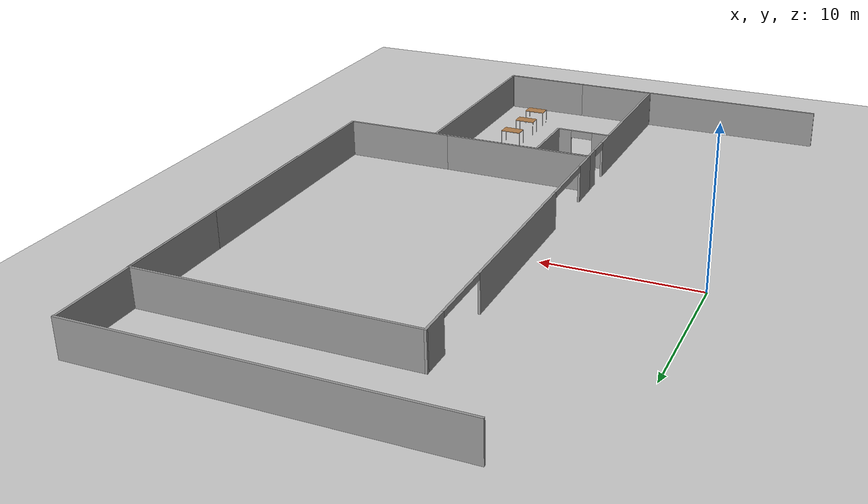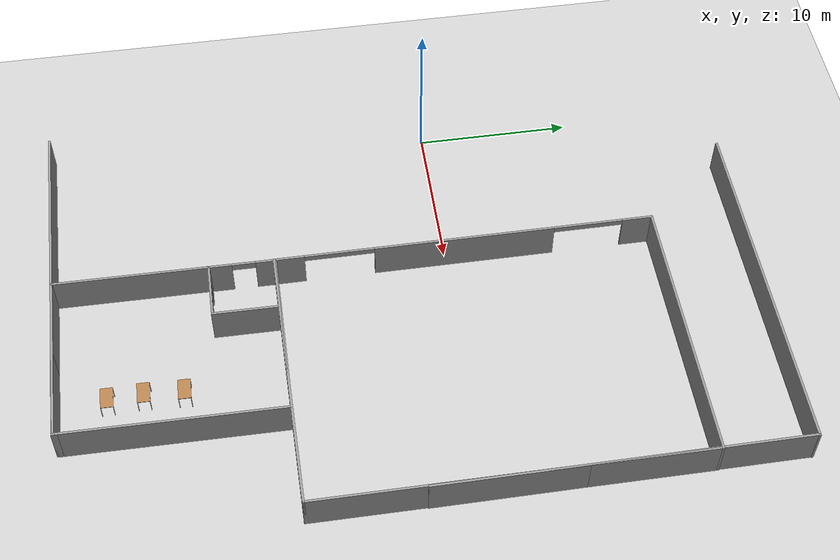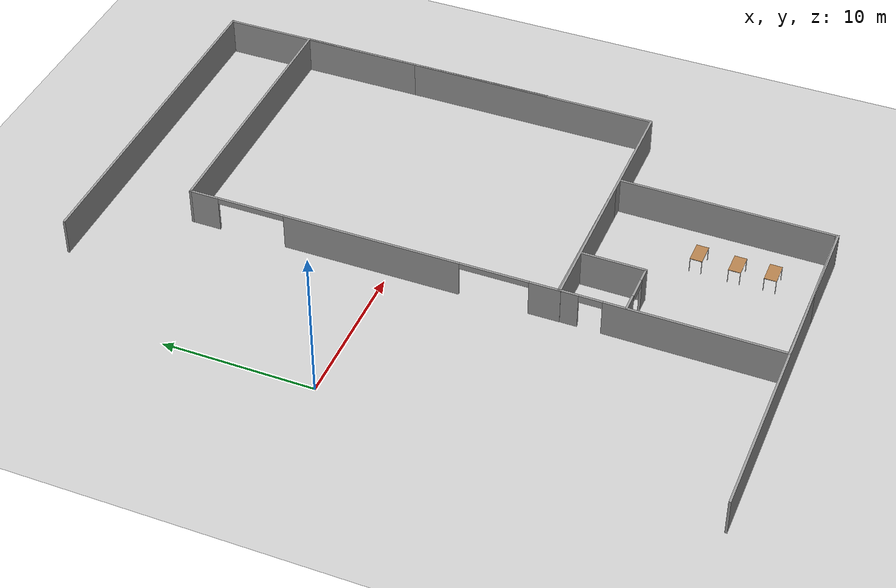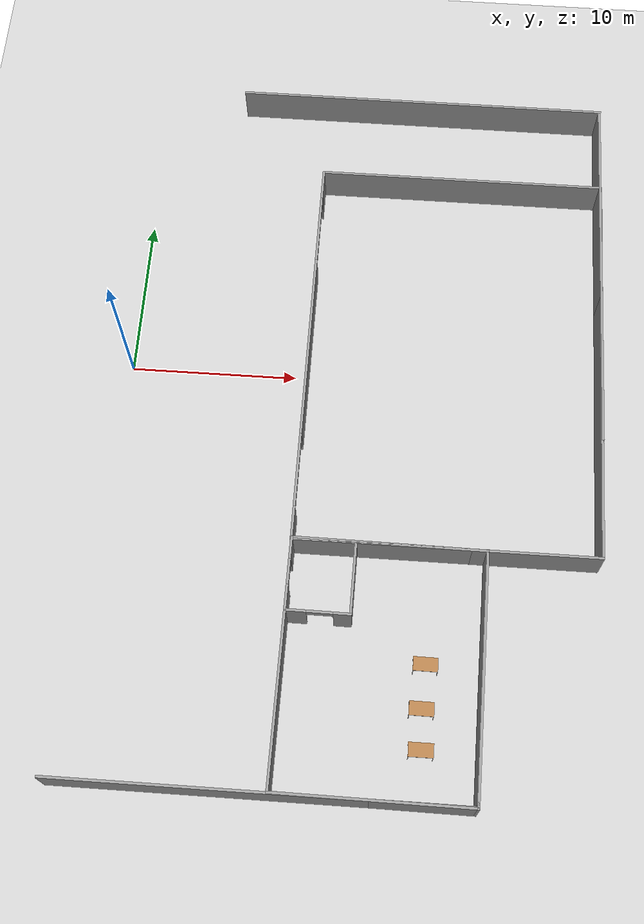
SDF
<sdf version="1.6">
 <world name="default">
  <model name="office3_0">
   <pose>16.2882 -18.1113 0 0 -0 1.56429</pose>
   <link name="Wall_226">
    <collision name="Wall_226_Collision">
     <geometry><box><size>11.25 0.15 2.5</size></box></geometry>
     <pose>0 0 1.25 0 -0 0</pose>
    </collision>
    <visual name="Wall_226_Visual">
     <pose>0 0 1.25 0 -0 0</pose>
     <geometry><box><size>11.25 0.15 2.5</size></box></geometry>
     <material>
      <script><uri>file://media/materials/scripts/gazebo.material</uri><name>Gazebo/Grey</name></script>
      <ambient>1 1 1 1</ambient>
     </material>
    </visual>
    <pose>-7.05 0 0 0 -0 1.5708</pose>
   </link>
   <link name="Wall_228">
    <pose>0 5.55 0 0 -0 0</pose>
    <visual name="Wall_228_Visual_0">
     <pose>-1.41788 0 1.25 0 -0 0</pose>
     <geometry><box><size>11.4142 0.15 2.5</size></box></geometry>
     <material>
      <script><uri>file://media/materials/scripts/gazebo.material</uri><name>Gazebo/Grey</name></script>
      <ambient>1 1 1 1</ambient>
     </material>
    </visual>
    <collision name="Wall_228_Collision_0">
     <geometry><box><size>11.4142 0.15 2.5</size></box></geometry>
     <pose>-1.41788 0 1.25 0 -0 0</pose>
    </collision>
    <visual name="Wall_228_Visual_1">
     <pose>6.45712 0 1.25 0 -0 0</pose>
     <geometry><box><size>1.33575 0.15 2.5</size></box></geometry>
     <material>
      <script><uri>file://media/materials/scripts/gazebo.material</uri><name>Gazebo/Grey</name></script>
      <ambient>1 1 1 1</ambient>
     </material>
    </visual>
    <collision name="Wall_228_Collision_1">
     <geometry><box><size>1.33575 0.15 2.5</size></box></geometry>
     <pose>6.45712 0 1.25 0 -0 0</pose>
    </collision>
    <visual name="Wall_228_Visual_2">
     <pose>5.03925 0 2.25 0 -0 0</pose>
     <geometry><box><size>1.5 0.15 0.5</size></box></geometry>
     <material>
      <script><uri>file://media/materials/scripts/gazebo.material</uri><name>Gazebo/Grey</name></script>
      <ambient>1 1 1 1</ambient>
     </material>
    </visual>
    <collision name="Wall_228_Collision_2">
     <geometry><box><size>1.5 0.15 0.5</size></box></geometry>
     <pose>5.03925 0 2.25 0 -0 0</pose>
    </collision>
   </link>
   <link name="Wall_229">
    <collision name="Wall_229_Collision">
     <geometry><box><size>11.25 0.15 2.5</size></box></geometry>
     <pose>0 0 1.25 0 -0 0</pose>
    </collision>
    <visual name="Wall_229_Visual">
     <pose>0 0 1.25 0 -0 0</pose>
     <geometry><box><size>11.25 0.15 2.5</size></box></geometry>
     <material>
      <script><uri>file://media/materials/scripts/gazebo.material</uri><name>Gazebo/Grey</name></script>
      <ambient>1 1 1 1</ambient>
     </material>
    </visual>
    <pose>7.05 0 0 0 0 -1.5708</pose>
   </link>
   <link name="Wall_230">
    <collision name="Wall_230_Collision">
     <geometry><box><size>14 0.15 2.5</size></box></geometry>
     <pose>0 0 1.25 0 -0 0</pose>
    </collision>
    <visual name="Wall_230_Visual">
     <pose>0 0 1.25 0 -0 0</pose>
     <geometry><box><size>14 0.15 2.5</size></box></geometry>
     <material>
      <script><uri>file://media/materials/scripts/gazebo.material</uri><name>Gazebo/Grey</name></script>
      <ambient>1 1 1 1</ambient>
     </material>
    </visual>
    <pose>0.125 -5.55 0 0 -0 3.14159</pose>
   </link>
   <link name="Wall_231">
    <collision name="Wall_231_Collision">
     <geometry><box><size>0.4 0.15 2.5</size></box></geometry>
     <pose>0 0 1.25 0 -0 0</pose>
    </collision>
    <visual name="Wall_231_Visual">
     <pose>0 0 1.25 0 -0 0</pose>
     <geometry><box><size>0.4 0.15 2.5</size></box></geometry>
     <material>
      <script><uri>file://media/materials/scripts/gazebo.material</uri><name>Gazebo/Grey</name></script>
      <ambient>1 1 1 1</ambient>
     </material>
    </visual>
    <pose>-6.925 -5.55 0 0 -0 3.14159</pose>
   </link>
   <link name="Wall_235">
    <pose>2.82004 3.69571 0 0 0 -1.5708</pose>
    <visual name="Wall_235_Visual_0">
     <pose>-1.26863 0 1.25 0 -0 0</pose>
     <geometry><box><size>1.21274 0.15 2.5</size></box></geometry>
     <material>
      <script><uri>file://media/materials/scripts/gazebo.material</uri><name>Gazebo/Grey</name></script>
      <ambient>1 1 1 1</ambient>
     </material>
    </visual>
    <collision name="Wall_235_Collision_0">
     <geometry><box><size>1.21274 0.15 2.5</size></box></geometry>
     <pose>-1.26863 0 1.25 0 -0 0</pose>
    </collision>
    <visual name="Wall_235_Visual_1">
     <pose>1.35637 0 1.25 0 -0 0</pose>
     <geometry><box><size>1.03726 0.15 2.5</size></box></geometry>
     <material>
      <script><uri>file://media/materials/scripts/gazebo.material</uri><name>Gazebo/Grey</name></script>
      <ambient>1 1 1 1</ambient>
     </material>
    </visual>
    <collision name="Wall_235_Collision_1">
     <geometry><box><size>1.03726 0.15 2.5</size></box></geometry>
     <pose>1.35637 0 1.25 0 -0 0</pose>
    </collision>
    <visual name="Wall_235_Visual_2">
     <pose>0.087742 0 2.25 0 -0 0</pose>
     <geometry><box><size>1.5 0.15 0.5</size></box></geometry>
     <material>
      <script><uri>file://media/materials/scripts/gazebo.material</uri><name>Gazebo/Grey</name></script>
      <ambient>1 1 1 1</ambient>
     </material>
    </visual>
    <collision name="Wall_235_Collision_2">
     <geometry><box><size>1.5 0.15 0.5</size></box></geometry>
     <pose>0.087742 0 2.25 0 -0 0</pose>
    </collision>
   </link>
   <link name="Wall_236">
    <collision name="Wall_236_Collision">
     <geometry><box><size>4.25 0.15 2.5</size></box></geometry>
     <pose>0 0 1.25 0 -0 0</pose>
    </collision>
    <visual name="Wall_236_Visual">
     <pose>0 0 1.25 0 -0 0</pose>
     <geometry><box><size>4.25 0.15 2.5</size></box></geometry>
     <material>
      <script><uri>file://media/materials/scripts/gazebo.material</uri><name>Gazebo/Grey</name></script>
      <ambient>1 1 1 1</ambient>
     </material>
    </visual>
    <pose>4.87004 1.89571 0 0 -0 0</pose>
   </link>
   <static>1</static>
  </model>
  <model name="park_1">
   <pose>19.5492 1.20649 0 0 -0 1.57203</pose>
   <link name="Wall_10">
    <collision name="Wall_10_Collision">
     <geometry><box><size>24.75 0.15 2.5</size></box></geometry>
     <pose>0 0 1.25 0 -0 0</pose>
    </collision>
    <visual name="Wall_10_Visual">
     <pose>0 0 1.25 0 -0 0</pose>
     <geometry><box><size>24.75 0.15 2.5</size></box></geometry>
     <material>
      <script><uri>file://media/materials/scripts/gazebo.material</uri><name>Gazebo/Grey</name></script>
      <ambient>1 1 1 1</ambient>
     </material>
    </visual>
    <pose>0 -8.8 0 0 -0 0</pose>
   </link>
   <link name="Wall_11">
    <collision name="Wall_11_Collision">
     <geometry><box><size>17.75 0.15 2.5</size></box></geometry>
     <pose>0 0 1.25 0 -0 0</pose>
    </collision>
    <visual name="Wall_11_Visual">
     <pose>0 0 1.25 0 -0 0</pose>
     <geometry><box><size>17.75 0.15 2.5</size></box></geometry>
     <material>
      <script><uri>file://media/materials/scripts/gazebo.material</uri><name>Gazebo/Grey</name></script>
      <ambient>1 1 1 1</ambient>
     </material>
    </visual>
    <pose>12.3 0 0 0 -0 1.5708</pose>
   </link>
   <link name="Wall_12">
    <pose>0 8.8 0 0 -0 3.14159</pose>
    <visual name="Wall_12_Visual_0">
     <pose>-11.3671 0 1.25 0 -0 0</pose>
     <geometry><box><size>2.0158 0.15 2.5</size></box></geometry>
     <material>
      <script><uri>file://media/materials/scripts/gazebo.material</uri><name>Gazebo/Grey</name></script>
      <ambient>1 1 1 1</ambient>
     </material>
    </visual>
    <collision name="Wall_12_Collision_0">
     <geometry><box><size>2.0158 0.15 2.5</size></box></geometry>
     <pose>-11.3671 0 1.25 0 -0 0</pose>
    </collision>
    <visual name="Wall_12_Visual_1">
     <pose>-0.005473 0 1.25 0 -0 0</pose>
     <geometry><box><size>11.7075 0.15 2.5</size></box></geometry>
     <material>
      <script><uri>file://media/materials/scripts/gazebo.material</uri><name>Gazebo/Grey</name></script>
      <ambient>1 1 1 1</ambient>
     </material>
    </visual>
    <collision name="Wall_12_Collision_1">
     <geometry><box><size>11.7075 0.15 2.5</size></box></geometry>
     <pose>-0.005473 0 1.25 0 -0 0</pose>
    </collision>
    <visual name="Wall_12_Visual_2">
     <pose>11.3616 0 1.25 0 -0 0</pose>
     <geometry><box><size>2.02674 0.15 2.5</size></box></geometry>
     <material>
      <script><uri>file://media/materials/scripts/gazebo.material</uri><name>Gazebo/Grey</name></script>
      <ambient>1 1 1 1</ambient>
     </material>
    </visual>
    <collision name="Wall_12_Collision_2">
     <geometry><box><size>2.02674 0.15 2.5</size></box></geometry>
     <pose>11.3616 0 1.25 0 -0 0</pose>
    </collision>
    <visual name="Wall_12_Visual_3">
     <pose>-8.1092 0 2.3 0 -0 0</pose>
     <geometry><box><size>4.5 0.15 0.4</size></box></geometry>
     <material>
      <script><uri>file://media/materials/scripts/gazebo.material</uri><name>Gazebo/Grey</name></script>
      <ambient>1 1 1 1</ambient>
     </material>
    </visual>
    <collision name="Wall_12_Collision_3">
     <geometry><box><size>4.5 0.15 0.4</size></box></geometry>
     <pose>-8.1092 0 2.3 0 -0 0</pose>
    </collision>
    <visual name="Wall_12_Visual_4">
     <pose>8.09826 0 2.3 0 -0 0</pose>
     <geometry><box><size>4.5 0.15 0.4</size></box></geometry>
     <material>
      <script><uri>file://media/materials/scripts/gazebo.material</uri><name>Gazebo/Grey</name></script>
      <ambient>1 1 1 1</ambient>
     </material>
    </visual>
    <collision name="Wall_12_Collision_4">
     <geometry><box><size>4.5 0.15 0.4</size></box></geometry>
     <pose>8.09826 0 2.3 0 -0 0</pose>
    </collision>
   </link>
   <link name="Wall_4">
    <collision name="Wall_4_Collision">
     <geometry><box><size>17.75 0.15 2.5</size></box></geometry>
     <pose>0 0 1.25 0 -0 0</pose>
    </collision>
    <visual name="Wall_4_Visual">
     <pose>0 0 1.25 0 -0 0</pose>
     <geometry><box><size>17.75 0.15 2.5</size></box></geometry>
     <material>
      <script><uri>file://media/materials/scripts/gazebo.material</uri><name>Gazebo/Grey</name></script>
      <ambient>1 1 1 1</ambient>
     </material>
    </visual>
    <pose>-12.3 0 0 0 0 -1.5708</pose>
   </link>
   <static>1</static>
  </model>
  <model name="table_4">
   <static>0</static>
   <link name="link">
    <collision name="surface">
     <pose>0 0 1 0 -0 0</pose>
     <geometry><box><size>1.5 0.8 0.03</size></box></geometry>
     <surface><friction><ode><mu>0.6</mu><mu2>0.6</mu2></ode></friction></surface>
    </collision>
    <visual name="visual1">
     <pose>0 0 1 0 -0 0</pose>
     <geometry><box><size>1.4 0.8 0.04</size></box></geometry>
     <material>
      <script><uri>file://media/materials/scripts/gazebo.material</uri><name>Gazebo/Wood</name></script>
     </material>
    </visual>
    <collision name="front_left_leg">
     <pose>0.68 0.38 0.5 0 -0 0</pose>
     <geometry><cylinder><radius>0.02</radius><length>1</length></cylinder></geometry>
    </collision>
    <visual name="front_left_leg">
     <pose>0.68 0.38 0.5 0 -0 0</pose>
     <geometry><cylinder><radius>0.02</radius><length>1</length></cylinder></geometry>
     <material>
      <script><uri>file://media/materials/scripts/gazebo.material</uri><name>Gazebo/Grey</name></script>
     </material>
    </visual>
    <collision name="front_right_leg">
     <pose>0.68 -0.38 0.5 0 -0 0</pose>
     <geometry><cylinder><radius>0.02</radius><length>1</length></cylinder></geometry>
    </collision>
    <visual name="front_right_leg">
     <pose>0.68 -0.38 0.5 0 -0 0</pose>
     <geometry><cylinder><radius>0.02</radius><length>1</length></cylinder></geometry>
     <material>
      <script><uri>file://media/materials/scripts/gazebo.material</uri><name>Gazebo/Grey</name></script>
     </material>
    </visual>
    <collision name="back_right_leg">
     <pose>-0.68 -0.38 0.5 0 -0 0</pose>
     <geometry><cylinder><radius>0.02</radius><length>1</length></cylinder></geometry>
    </collision>
    <visual name="back_right_leg">
     <pose>-0.68 -0.38 0.5 0 -0 0</pose>
     <geometry><cylinder><radius>0.02</radius><length>1</length></cylinder></geometry>
     <material>
      <script><uri>file://media/materials/scripts/gazebo.material</uri><name>Gazebo/Grey</name></script>
     </material>
    </visual>
    <collision name="back_left_leg">
     <pose>-0.68 0.38 0.5 0 -0 0</pose>
     <geometry><cylinder><radius>0.02</radius><length>1</length></cylinder></geometry>
    </collision>
    <visual name="back_left_leg">
     <pose>-0.68 0.38 0.5 0 -0 0</pose>
     <geometry><cylinder><radius>0.02</radius><length>1</length></cylinder></geometry>
     <material>
      <script><uri>file://media/materials/scripts/gazebo.material</uri><name>Gazebo/Grey</name></script>
     </material>
    </visual>
    <inertial>
     <inertia><ixx>1</ixx><ixy>0</ixy><ixz>0</ixz><iyy>1</iyy><iyz>0</iyz><izz>1</izz></inertia>
     <mass>1</mass>
    </inertial>
   </link>
   <pose>18.7391 -17.4246 -8e-06 0 -2e-06 -0.009973</pose>
  </model>
  <model name="table_5">
   <static>0</static>
   <link name="link">
    <collision name="surface">
     <pose>0 0 1 0 -0 0</pose>
     <geometry><box><size>1.5 0.8 0.03</size></box></geometry>
     <surface><friction><ode><mu>0.6</mu><mu2>0.6</mu2></ode></friction></surface>
    </collision>
    <visual name="visual1">
     <pose>0 0 1 0 -0 0</pose>
     <geometry><box><size>1.4 0.8 0.04</size></box></geometry>
     <material>
      <script><uri>file://media/materials/scripts/gazebo.material</uri><name>Gazebo/Wood</name></script>
     </material>
    </visual>
    <collision name="front_left_leg">
     <pose>0.68 0.38 0.5 0 -0 0</pose>
     <geometry><cylinder><radius>0.02</radius><length>1</length></cylinder></geometry>
    </collision>
    <visual name="front_left_leg">
     <pose>0.68 0.38 0.5 0 -0 0</pose>
     <geometry><cylinder><radius>0.02</radius><length>1</length></cylinder></geometry>
     <material>
      <script><uri>file://media/materials/scripts/gazebo.material</uri><name>Gazebo/Grey</name></script>
     </material>
    </visual>
    <collision name="front_right_leg">
     <pose>0.68 -0.38 0.5 0 -0 0</pose>
     <geometry><cylinder><radius>0.02</radius><length>1</length></cylinder></geometry>
    </collision>
    <visual name="front_right_leg">
     <pose>0.68 -0.38 0.5 0 -0 0</pose>
     <geometry><cylinder><radius>0.02</radius><length>1</length></cylinder></geometry>
     <material>
      <script><uri>file://media/materials/scripts/gazebo.material</uri><name>Gazebo/Grey</name></script>
     </material>
    </visual>
    <collision name="back_right_leg">
     <pose>-0.68 -0.38 0.5 0 -0 0</pose>
     <geometry><cylinder><radius>0.02</radius><length>1</length></cylinder></geometry>
    </collision>
    <visual name="back_right_leg">
     <pose>-0.68 -0.38 0.5 0 -0 0</pose>
     <geometry><cylinder><radius>0.02</radius><length>1</length></cylinder></geometry>
     <material>
      <script><uri>file://media/materials/scripts/gazebo.material</uri><name>Gazebo/Grey</name></script>
     </material>
    </visual>
    <collision name="back_left_leg">
     <pose>-0.68 0.38 0.5 0 -0 0</pose>
     <geometry><cylinder><radius>0.02</radius><length>1</length></cylinder></geometry>
    </collision>
    <visual name="back_left_leg">
     <pose>-0.68 0.38 0.5 0 -0 0</pose>
     <geometry><cylinder><radius>0.02</radius><length>1</length></cylinder></geometry>
     <material>
      <script><uri>file://media/materials/scripts/gazebo.material</uri><name>Gazebo/Grey</name></script>
     </material>
    </visual>
    <inertial>
     <inertia><ixx>1</ixx><ixy>0</ixy><ixz>0</ixz><iyy>1</iyy><iyz>0</iyz><izz>1</izz></inertia>
     <mass>1</mass>
    </inertial>
   </link>
   <pose>18.6346 -19.9013 -9e-06 0 -1e-06 -0.008076</pose>
  </model>
  <model name="table_6">
   <static>0</static>
   <link name="link">
    <collision name="surface">
     <pose>0 0 1 0 -0 0</pose>
     <geometry><box><size>1.5 0.8 0.03</size></box></geometry>
     <surface><friction><ode><mu>0.6</mu><mu2>0.6</mu2></ode></friction></surface>
    </collision>
    <visual name="visual1">
     <pose>0 0 1 0 -0 0</pose>
     <geometry><box><size>1.4 0.8 0.04</size></box></geometry>
     <material>
      <script><uri>file://media/materials/scripts/gazebo.material</uri><name>Gazebo/Wood</name></script>
     </material>
    </visual>
    <collision name="front_left_leg">
     <pose>0.68 0.38 0.5 0 -0 0</pose>
     <geometry><cylinder><radius>0.02</radius><length>1</length></cylinder></geometry>
    </collision>
    <visual name="front_left_leg">
     <pose>0.68 0.38 0.5 0 -0 0</pose>
     <geometry><cylinder><radius>0.02</radius><length>1</length></cylinder></geometry>
     <material>
      <script><uri>file://media/materials/scripts/gazebo.material</uri><name>Gazebo/Grey</name></script>
     </material>
    </visual>
    <collision name="front_right_leg">
     <pose>0.68 -0.38 0.5 0 -0 0</pose>
     <geometry><cylinder><radius>0.02</radius><length>1</length></cylinder></geometry>
    </collision>
    <visual name="front_right_leg">
     <pose>0.68 -0.38 0.5 0 -0 0</pose>
     <geometry><cylinder><radius>0.02</radius><length>1</length></cylinder></geometry>
     <material>
      <script><uri>file://media/materials/scripts/gazebo.material</uri><name>Gazebo/Grey</name></script>
     </material>
    </visual>
    <collision name="back_right_leg">
     <pose>-0.68 -0.38 0.5 0 -0 0</pose>
     <geometry><cylinder><radius>0.02</radius><length>1</length></cylinder></geometry>
    </collision>
    <visual name="back_right_leg">
     <pose>-0.68 -0.38 0.5 0 -0 0</pose>
     <geometry><cylinder><radius>0.02</radius><length>1</length></cylinder></geometry>
     <material>
      <script><uri>file://media/materials/scripts/gazebo.material</uri><name>Gazebo/Grey</name></script>
     </material>
    </visual>
    <collision name="back_left_leg">
     <pose>-0.68 0.38 0.5 0 -0 0</pose>
     <geometry><cylinder><radius>0.02</radius><length>1</length></cylinder></geometry>
    </collision>
    <visual name="back_left_leg">
     <pose>-0.68 0.38 0.5 0 -0 0</pose>
     <geometry><cylinder><radius>0.02</radius><length>1</length></cylinder></geometry>
     <material>
      <script><uri>file://media/materials/scripts/gazebo.material</uri><name>Gazebo/Grey</name></script>
     </material>
    </visual>
    <inertial>
     <inertia><ixx>1</ixx><ixy>0</ixy><ixz>0</ixz><iyy>1</iyy><iyz>0</iyz><izz>1</izz></inertia>
     <mass>1</mass>
    </inertial>
   </link>
   <pose>18.7055 -22.1335 -9e-06 0 -1e-06 0.002116</pose>
  </model>
  <model name="ground_plane">
   <static>1</static>
   <link name="link">
    <collision name="collision">
     <geometry><plane><normal>0 0 1</normal><size>100 100</size></plane></geometry>
     <surface><friction><ode><mu>100</mu><mu2>50</mu2></ode></friction></surface>
    </collision>
    <visual name="visual">
     <cast_shadows>0</cast_shadows>
     <geometry><plane><normal>0 0 1</normal><size>100 100</size></plane></geometry>
     <material>
      <script><uri>file://media/materials/scripts/gazebo.material</uri><name>Gazebo/Grey</name></script>
     </material>
    </visual>
   </link>
   <pose>-15.0444 -9.09866 0 0 -0 0</pose>
  </model>
  <model name="wall_1">
   <pose>16.7457 19.3405 0 0 -0 0</pose>
   <link name="Wall_4">
    <collision name="Wall_4_Collision">
     <geometry><box><size>23.25 0.15 2.5</size></box></geometry>
     <pose>0 0 1.25 0 -0 0</pose>
    </collision>
    <visual name="Wall_4_Visual">
     <pose>0 0 1.25 0 -0 0</pose>
     <geometry><box><size>23.25 0.15 2.5</size></box></geometry>
     <material>
      <script><uri>file://media/materials/scripts/gazebo.material</uri><name>Gazebo/Grey</name></script>
      <ambient>1 1 1 1</ambient>
     </material>
     <meta><layer>0</layer></meta>
    </visual>
   </link>
   <static>1</static>
  </model>
  <model name="wall_clone_clone_0">
   <pose>28.3324 7.75469 0 0 0 -1.56544</pose>
   <link name="Wall_4">
    <collision name="Wall_4_Collision">
     <geometry><box><size>23.25 0.15 2.5</size></box></geometry>
     <pose>0 0 1.25 0 -0 0</pose>
    </collision>
    <visual name="Wall_4_Visual">
     <pose>0 0 1.25 0 -0 0</pose>
     <geometry><box><size>23.25 0.15 2.5</size></box></geometry>
     <material>
      <script><uri>file://media/materials/scripts/gazebo.material</uri><name>Gazebo/Grey</name></script>
      <ambient>1 1 1 1</ambient>
     </material>
     <meta><layer>0</layer></meta>
    </visual>
   </link>
   <static>1</static>
  </model>
  <model name="wall_clone_2">
   <pose>10.0869 -25.1598 0 0 -0 0</pose>
   <link name="Wall_4">
    <collision name="Wall_4_Collision">
     <geometry><box><size>23.25 0.15 2.5</size></box></geometry>
     <pose>0 0 1.25 0 -0 0</pose>
    </collision>
    <visual name="Wall_4_Visual">
     <pose>0 0 1.25 0 -0 0</pose>
     <geometry><box><size>23.25 0.15 2.5</size></box></geometry>
     <material>
      <script><uri>file://media/materials/scripts/gazebo.material</uri><name>Gazebo/Grey</name></script>
      <ambient>1 1 1 1</ambient>
     </material>
     <meta><layer>0</layer></meta>
    </visual>
   </link>
   <static>1</static>
  </model>
 </world>
</sdf>
